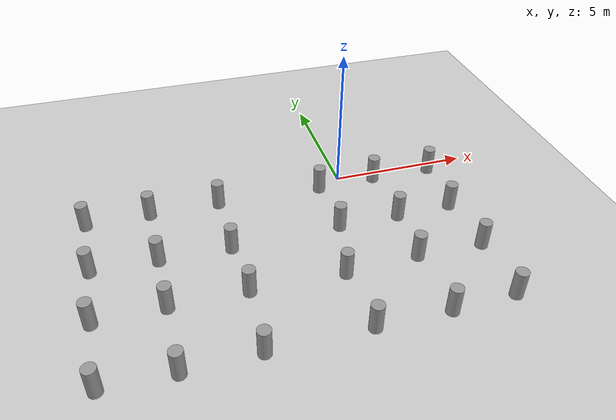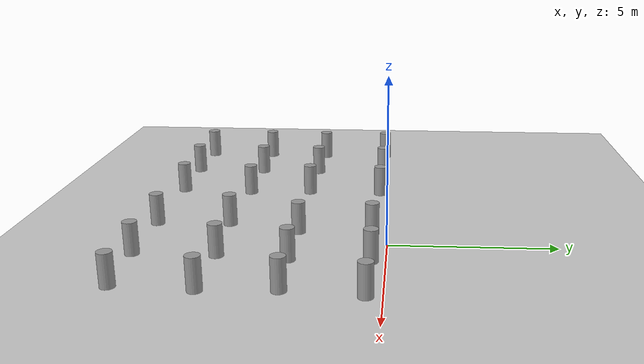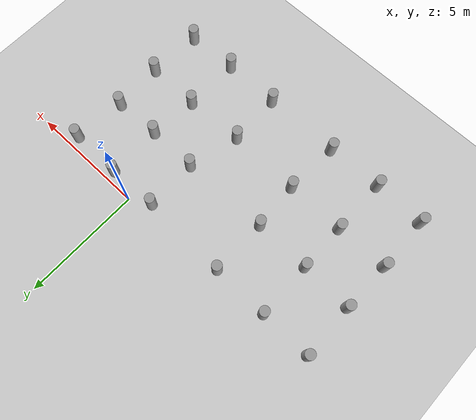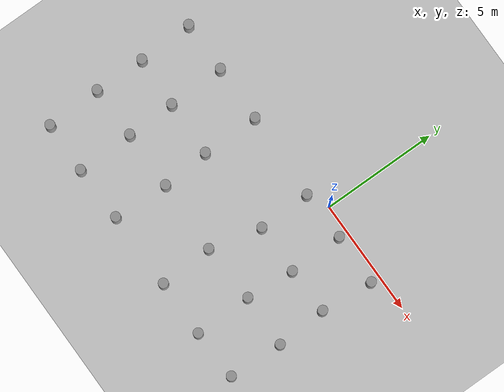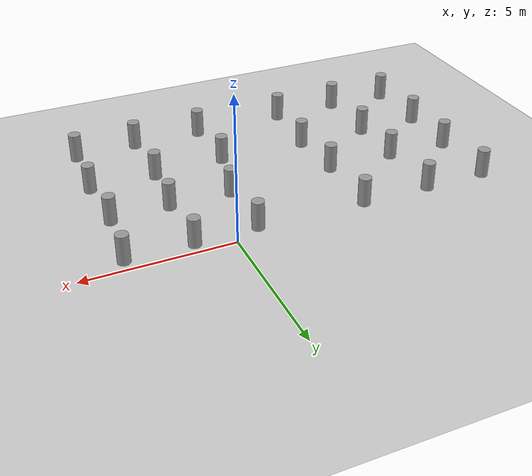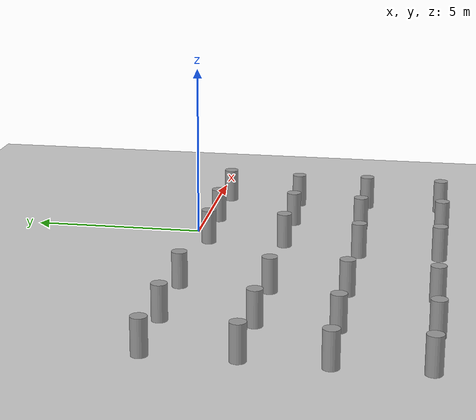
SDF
<sdf version="1.7">
 <world name="default">
  <model name="ground_plane">
   <static>1</static>
   <link name="link">
    <collision name="collision">
     <geometry><plane><normal>0 0 1</normal><size>100 100</size></plane></geometry>
     <surface><friction><ode><mu>100</mu><mu2>50</mu2></ode></friction></surface>
    </collision>
    <visual name="visual">
     <cast_shadows>0</cast_shadows>
     <geometry><plane><normal>0 0 1</normal><size>100 100</size></plane></geometry>
     <material>
      <script><uri>file://media/materials/scripts/gazebo.material</uri><name>Gazebo/Grey</name></script>
     </material>
    </visual>
   </link>
  </model>
  <model name="seats">
   <link name="link_20">
    <inertial>
     <mass>0.184397</mass>
     <inertia>
      <ixx>0.0174914</ixx>
      <ixy>0</ixy>
      <ixz>0</ixz>
      <iyy>0.0174914</iyy>
      <iyz>0</iyz>
      <izz>0.00425014</izz>
     </inertia>
    </inertial>
    <pose>2.04041 1.08851 0 0 -0 0</pose>
    <visual name="visual">
     <geometry><cylinder><radius>0.214704</radius><length>1</length></cylinder></geometry>
     <material>
      <lighting>1</lighting>
      <script><uri>file://media/materials/scripts/gazebo.material</uri><name>Gazebo/Grey</name></script>
      <shader type="pixel"/>
     </material>
    </visual>
    <collision name="collision">
     <geometry><cylinder><radius>0.214704</radius><length>1</length></cylinder></geometry>
     <surface>
      <friction>
       <ode><mu>1</mu><mu2>1</mu2><fdir1>0 0 0</fdir1><slip1>0</slip1><slip2>0</slip2></ode>
       <torsional>
        <coefficient>1</coefficient>
        <patch_radius>0</patch_radius>
        <surface_radius>0</surface_radius>
        <use_patch_radius>1</use_patch_radius>
        <ode><slip>0</slip></ode>
       </torsional>
      </friction>
      <bounce><restitution_coefficient>0</restitution_coefficient><threshold>1e+06</threshold></bounce>
      <contact>
       <collide_without_contact>0</collide_without_contact>
       <collide_without_contact_bitmask>1</collide_without_contact_bitmask>
       <collide_bitmask>1</collide_bitmask>
       <ode>
        <soft_cfm>0</soft_cfm>
        <soft_erp>0.2</soft_erp>
        <kp>1e+13</kp>
        <kd>1</kd>
        <max_vel>0.01</max_vel>
        <min_depth>0</min_depth>
       </ode>
       <bullet>
        <split_impulse>1</split_impulse>
        <split_impulse_penetration_threshold>-0.01</split_impulse_penetration_threshold>
        <soft_cfm>0</soft_cfm>
        <soft_erp>0.2</soft_erp>
        <kp>1e+13</kp>
        <kd>1</kd>
       </bullet>
      </contact>
     </surface>
    </collision>
   </link>
   <link name="link_20_clone">
    <inertial>
     <mass>0.184397</mass>
     <inertia>
      <ixx>0.0174914</ixx>
      <ixy>0</ixy>
      <ixz>0</ixz>
      <iyy>0.0174914</iyy>
      <iyz>0</iyz>
      <izz>0.00425014</izz>
     </inertia>
    </inertial>
    <pose>2.01513 3.33293 0 0 -0 0</pose>
    <visual name="visual">
     <geometry><cylinder><radius>0.214704</radius><length>1</length></cylinder></geometry>
     <material>
      <lighting>1</lighting>
      <script><uri>file://media/materials/scripts/gazebo.material</uri><name>Gazebo/Grey</name></script>
      <shader type="pixel"/>
     </material>
    </visual>
    <collision name="collision">
     <geometry><cylinder><radius>0.214704</radius><length>1</length></cylinder></geometry>
     <surface>
      <friction>
       <ode><mu>1</mu><mu2>1</mu2><fdir1>0 0 0</fdir1><slip1>0</slip1><slip2>0</slip2></ode>
       <torsional>
        <coefficient>1</coefficient>
        <patch_radius>0</patch_radius>
        <surface_radius>0</surface_radius>
        <use_patch_radius>1</use_patch_radius>
        <ode><slip>0</slip></ode>
       </torsional>
      </friction>
      <bounce><restitution_coefficient>0</restitution_coefficient><threshold>1e+06</threshold></bounce>
      <contact>
       <collide_without_contact>0</collide_without_contact>
       <collide_without_contact_bitmask>1</collide_without_contact_bitmask>
       <collide_bitmask>1</collide_bitmask>
       <ode>
        <soft_cfm>0</soft_cfm>
        <soft_erp>0.2</soft_erp>
        <kp>1e+13</kp>
        <kd>1</kd>
        <max_vel>0.01</max_vel>
        <min_depth>0</min_depth>
       </ode>
       <bullet>
        <split_impulse>1</split_impulse>
        <split_impulse_penetration_threshold>-0.01</split_impulse_penetration_threshold>
        <soft_cfm>0</soft_cfm>
        <soft_erp>0.2</soft_erp>
        <kp>1e+13</kp>
        <kd>1</kd>
       </bullet>
      </contact>
     </surface>
    </collision>
   </link>
   <link name="link_20_clone_0">
    <inertial>
     <mass>0.184397</mass>
     <inertia>
      <ixx>0.0174914</ixx>
      <ixy>0</ixy>
      <ixz>0</ixz>
      <iyy>0.0174914</iyy>
      <iyz>0</iyz>
      <izz>0.00425014</izz>
     </inertia>
    </inertial>
    <pose>4.14757 3.39835 0 0 -0 0</pose>
    <visual name="visual">
     <geometry><cylinder><radius>0.214704</radius><length>1</length></cylinder></geometry>
     <material>
      <lighting>1</lighting>
      <script><uri>file://media/materials/scripts/gazebo.material</uri><name>Gazebo/Grey</name></script>
      <shader type="pixel"/>
     </material>
    </visual>
    <collision name="collision">
     <geometry><cylinder><radius>0.214704</radius><length>1</length></cylinder></geometry>
     <surface>
      <friction>
       <ode><mu>1</mu><mu2>1</mu2><fdir1>0 0 0</fdir1><slip1>0</slip1><slip2>0</slip2></ode>
       <torsional>
        <coefficient>1</coefficient>
        <patch_radius>0</patch_radius>
        <surface_radius>0</surface_radius>
        <use_patch_radius>1</use_patch_radius>
        <ode><slip>0</slip></ode>
       </torsional>
      </friction>
      <bounce><restitution_coefficient>0</restitution_coefficient><threshold>1e+06</threshold></bounce>
      <contact>
       <collide_without_contact>0</collide_without_contact>
       <collide_without_contact_bitmask>1</collide_without_contact_bitmask>
       <collide_bitmask>1</collide_bitmask>
       <ode>
        <soft_cfm>0</soft_cfm>
        <soft_erp>0.2</soft_erp>
        <kp>1e+13</kp>
        <kd>1</kd>
        <max_vel>0.01</max_vel>
        <min_depth>0</min_depth>
       </ode>
       <bullet>
        <split_impulse>1</split_impulse>
        <split_impulse_penetration_threshold>-0.01</split_impulse_penetration_threshold>
        <soft_cfm>0</soft_cfm>
        <soft_erp>0.2</soft_erp>
        <kp>1e+13</kp>
        <kd>1</kd>
       </bullet>
      </contact>
     </surface>
    </collision>
   </link>
   <link name="link_20_clone_1">
    <inertial>
     <mass>0.184397</mass>
     <inertia>
      <ixx>0.0174914</ixx>
      <ixy>0</ixy>
      <ixz>0</ixz>
      <iyy>0.0174914</iyy>
      <iyz>0</iyz>
      <izz>0.00425014</izz>
     </inertia>
    </inertial>
    <pose>6.36814 3.3742 0 0 -0 0</pose>
    <visual name="visual">
     <geometry><cylinder><radius>0.214704</radius><length>1</length></cylinder></geometry>
     <material>
      <lighting>1</lighting>
      <script><uri>file://media/materials/scripts/gazebo.material</uri><name>Gazebo/Grey</name></script>
      <shader type="pixel"/>
     </material>
    </visual>
    <collision name="collision">
     <geometry><cylinder><radius>0.214704</radius><length>1</length></cylinder></geometry>
     <surface>
      <friction>
       <ode><mu>1</mu><mu2>1</mu2><fdir1>0 0 0</fdir1><slip1>0</slip1><slip2>0</slip2></ode>
       <torsional>
        <coefficient>1</coefficient>
        <patch_radius>0</patch_radius>
        <surface_radius>0</surface_radius>
        <use_patch_radius>1</use_patch_radius>
        <ode><slip>0</slip></ode>
       </torsional>
      </friction>
      <bounce><restitution_coefficient>0</restitution_coefficient><threshold>1e+06</threshold></bounce>
      <contact>
       <collide_without_contact>0</collide_without_contact>
       <collide_without_contact_bitmask>1</collide_without_contact_bitmask>
       <collide_bitmask>1</collide_bitmask>
       <ode>
        <soft_cfm>0</soft_cfm>
        <soft_erp>0.2</soft_erp>
        <kp>1e+13</kp>
        <kd>1</kd>
        <max_vel>0.01</max_vel>
        <min_depth>0</min_depth>
       </ode>
       <bullet>
        <split_impulse>1</split_impulse>
        <split_impulse_penetration_threshold>-0.01</split_impulse_penetration_threshold>
        <soft_cfm>0</soft_cfm>
        <soft_erp>0.2</soft_erp>
        <kp>1e+13</kp>
        <kd>1</kd>
       </bullet>
      </contact>
     </surface>
    </collision>
   </link>
   <link name="link_20_clone_10">
    <inertial>
     <mass>0.184397</mass>
     <inertia>
      <ixx>0.0174914</ixx>
      <ixy>0</ixy>
      <ixz>0</ixz>
      <iyy>0.0174914</iyy>
      <iyz>0</iyz>
      <izz>0.00425014</izz>
     </inertia>
    </inertial>
    <pose>-1.707 -3.42687 0 0 -0 0</pose>
    <visual name="visual">
     <geometry><cylinder><radius>0.214704</radius><length>1</length></cylinder></geometry>
     <material>
      <lighting>1</lighting>
      <script><uri>file://media/materials/scripts/gazebo.material</uri><name>Gazebo/Grey</name></script>
      <shader type="pixel"/>
     </material>
    </visual>
    <collision name="collision">
     <geometry><cylinder><radius>0.214704</radius><length>1</length></cylinder></geometry>
     <surface>
      <friction>
       <ode><mu>1</mu><mu2>1</mu2><fdir1>0 0 0</fdir1><slip1>0</slip1><slip2>0</slip2></ode>
       <torsional>
        <coefficient>1</coefficient>
        <patch_radius>0</patch_radius>
        <surface_radius>0</surface_radius>
        <use_patch_radius>1</use_patch_radius>
        <ode><slip>0</slip></ode>
       </torsional>
      </friction>
      <bounce><restitution_coefficient>0</restitution_coefficient><threshold>1e+06</threshold></bounce>
      <contact>
       <collide_without_contact>0</collide_without_contact>
       <collide_without_contact_bitmask>1</collide_without_contact_bitmask>
       <collide_bitmask>1</collide_bitmask>
       <ode>
        <soft_cfm>0</soft_cfm>
        <soft_erp>0.2</soft_erp>
        <kp>1e+13</kp>
        <kd>1</kd>
        <max_vel>0.01</max_vel>
        <min_depth>0</min_depth>
       </ode>
       <bullet>
        <split_impulse>1</split_impulse>
        <split_impulse_penetration_threshold>-0.01</split_impulse_penetration_threshold>
        <soft_cfm>0</soft_cfm>
        <soft_erp>0.2</soft_erp>
        <kp>1e+13</kp>
        <kd>1</kd>
       </bullet>
      </contact>
     </surface>
    </collision>
   </link>
   <link name="link_20_clone_11">
    <inertial>
     <mass>0.184397</mass>
     <inertia>
      <ixx>0.0174914</ixx>
      <ixy>0</ixy>
      <ixz>0</ixz>
      <iyy>0.0174914</iyy>
      <iyz>0</iyz>
      <izz>0.00425014</izz>
     </inertia>
    </inertial>
    <pose>-4.08187 -3.4742 0 0 -0 0</pose>
    <visual name="visual">
     <geometry><cylinder><radius>0.214704</radius><length>1</length></cylinder></geometry>
     <material>
      <lighting>1</lighting>
      <script><uri>file://media/materials/scripts/gazebo.material</uri><name>Gazebo/Grey</name></script>
      <shader type="pixel"/>
     </material>
    </visual>
    <collision name="collision">
     <geometry><cylinder><radius>0.214704</radius><length>1</length></cylinder></geometry>
     <surface>
      <friction>
       <ode><mu>1</mu><mu2>1</mu2><fdir1>0 0 0</fdir1><slip1>0</slip1><slip2>0</slip2></ode>
       <torsional>
        <coefficient>1</coefficient>
        <patch_radius>0</patch_radius>
        <surface_radius>0</surface_radius>
        <use_patch_radius>1</use_patch_radius>
        <ode><slip>0</slip></ode>
       </torsional>
      </friction>
      <bounce><restitution_coefficient>0</restitution_coefficient><threshold>1e+06</threshold></bounce>
      <contact>
       <collide_without_contact>0</collide_without_contact>
       <collide_without_contact_bitmask>1</collide_without_contact_bitmask>
       <collide_bitmask>1</collide_bitmask>
       <ode>
        <soft_cfm>0</soft_cfm>
        <soft_erp>0.2</soft_erp>
        <kp>1e+13</kp>
        <kd>1</kd>
        <max_vel>0.01</max_vel>
        <min_depth>0</min_depth>
       </ode>
       <bullet>
        <split_impulse>1</split_impulse>
        <split_impulse_penetration_threshold>-0.01</split_impulse_penetration_threshold>
        <soft_cfm>0</soft_cfm>
        <soft_erp>0.2</soft_erp>
        <kp>1e+13</kp>
        <kd>1</kd>
       </bullet>
      </contact>
     </surface>
    </collision>
   </link>
   <link name="link_20_clone_12">
    <inertial>
     <mass>0.184397</mass>
     <inertia>
      <ixx>0.0174914</ixx>
      <ixy>0</ixy>
      <ixz>0</ixz>
      <iyy>0.0174914</iyy>
      <iyz>0</iyz>
      <izz>0.00425014</izz>
     </inertia>
    </inertial>
    <pose>-6.26898 -3.42449 0 0 -0 0</pose>
    <visual name="visual">
     <geometry><cylinder><radius>0.214704</radius><length>1</length></cylinder></geometry>
     <material>
      <lighting>1</lighting>
      <script><uri>file://media/materials/scripts/gazebo.material</uri><name>Gazebo/Grey</name></script>
      <shader type="pixel"/>
     </material>
    </visual>
    <collision name="collision">
     <geometry><cylinder><radius>0.214704</radius><length>1</length></cylinder></geometry>
     <surface>
      <friction>
       <ode><mu>1</mu><mu2>1</mu2><fdir1>0 0 0</fdir1><slip1>0</slip1><slip2>0</slip2></ode>
       <torsional>
        <coefficient>1</coefficient>
        <patch_radius>0</patch_radius>
        <surface_radius>0</surface_radius>
        <use_patch_radius>1</use_patch_radius>
        <ode><slip>0</slip></ode>
       </torsional>
      </friction>
      <bounce><restitution_coefficient>0</restitution_coefficient><threshold>1e+06</threshold></bounce>
      <contact>
       <collide_without_contact>0</collide_without_contact>
       <collide_without_contact_bitmask>1</collide_without_contact_bitmask>
       <collide_bitmask>1</collide_bitmask>
       <ode>
        <soft_cfm>0</soft_cfm>
        <soft_erp>0.2</soft_erp>
        <kp>1e+13</kp>
        <kd>1</kd>
        <max_vel>0.01</max_vel>
        <min_depth>0</min_depth>
       </ode>
       <bullet>
        <split_impulse>1</split_impulse>
        <split_impulse_penetration_threshold>-0.01</split_impulse_penetration_threshold>
        <soft_cfm>0</soft_cfm>
        <soft_erp>0.2</soft_erp>
        <kp>1e+13</kp>
        <kd>1</kd>
       </bullet>
      </contact>
     </surface>
    </collision>
   </link>
   <link name="link_20_clone_13">
    <inertial>
     <mass>0.184397</mass>
     <inertia>
      <ixx>0.0174914</ixx>
      <ixy>0</ixy>
      <ixz>0</ixz>
      <iyy>0.0174914</iyy>
      <iyz>0</iyz>
      <izz>0.00425014</izz>
     </inertia>
    </inertial>
    <pose>-6.32123 -1.0665 0 0 -0 0</pose>
    <visual name="visual">
     <geometry><cylinder><radius>0.214704</radius><length>1</length></cylinder></geometry>
     <material>
      <lighting>1</lighting>
      <script><uri>file://media/materials/scripts/gazebo.material</uri><name>Gazebo/Grey</name></script>
      <shader type="pixel"/>
     </material>
    </visual>
    <collision name="collision">
     <geometry><cylinder><radius>0.214704</radius><length>1</length></cylinder></geometry>
     <surface>
      <friction>
       <ode><mu>1</mu><mu2>1</mu2><fdir1>0 0 0</fdir1><slip1>0</slip1><slip2>0</slip2></ode>
       <torsional>
        <coefficient>1</coefficient>
        <patch_radius>0</patch_radius>
        <surface_radius>0</surface_radius>
        <use_patch_radius>1</use_patch_radius>
        <ode><slip>0</slip></ode>
       </torsional>
      </friction>
      <bounce><restitution_coefficient>0</restitution_coefficient><threshold>1e+06</threshold></bounce>
      <contact>
       <collide_without_contact>0</collide_without_contact>
       <collide_without_contact_bitmask>1</collide_without_contact_bitmask>
       <collide_bitmask>1</collide_bitmask>
       <ode>
        <soft_cfm>0</soft_cfm>
        <soft_erp>0.2</soft_erp>
        <kp>1e+13</kp>
        <kd>1</kd>
        <max_vel>0.01</max_vel>
        <min_depth>0</min_depth>
       </ode>
       <bullet>
        <split_impulse>1</split_impulse>
        <split_impulse_penetration_threshold>-0.01</split_impulse_penetration_threshold>
        <soft_cfm>0</soft_cfm>
        <soft_erp>0.2</soft_erp>
        <kp>1e+13</kp>
        <kd>1</kd>
       </bullet>
      </contact>
     </surface>
    </collision>
   </link>
   <link name="link_20_clone_14">
    <inertial>
     <mass>0.184397</mass>
     <inertia>
      <ixx>0.0174914</ixx>
      <ixy>0</ixy>
      <ixz>0</ixz>
      <iyy>0.0174914</iyy>
      <iyz>0</iyz>
      <izz>0.00425014</izz>
     </inertia>
    </inertial>
    <pose>-4.09685 -1.04435 0 0 -0 0</pose>
    <visual name="visual">
     <geometry><cylinder><radius>0.214704</radius><length>1</length></cylinder></geometry>
     <material>
      <lighting>1</lighting>
      <script><uri>file://media/materials/scripts/gazebo.material</uri><name>Gazebo/Grey</name></script>
      <shader type="pixel"/>
     </material>
    </visual>
    <collision name="collision">
     <geometry><cylinder><radius>0.214704</radius><length>1</length></cylinder></geometry>
     <surface>
      <friction>
       <ode><mu>1</mu><mu2>1</mu2><fdir1>0 0 0</fdir1><slip1>0</slip1><slip2>0</slip2></ode>
       <torsional>
        <coefficient>1</coefficient>
        <patch_radius>0</patch_radius>
        <surface_radius>0</surface_radius>
        <use_patch_radius>1</use_patch_radius>
        <ode><slip>0</slip></ode>
       </torsional>
      </friction>
      <bounce><restitution_coefficient>0</restitution_coefficient><threshold>1e+06</threshold></bounce>
      <contact>
       <collide_without_contact>0</collide_without_contact>
       <collide_without_contact_bitmask>1</collide_without_contact_bitmask>
       <collide_bitmask>1</collide_bitmask>
       <ode>
        <soft_cfm>0</soft_cfm>
        <soft_erp>0.2</soft_erp>
        <kp>1e+13</kp>
        <kd>1</kd>
        <max_vel>0.01</max_vel>
        <min_depth>0</min_depth>
       </ode>
       <bullet>
        <split_impulse>1</split_impulse>
        <split_impulse_penetration_threshold>-0.01</split_impulse_penetration_threshold>
        <soft_cfm>0</soft_cfm>
        <soft_erp>0.2</soft_erp>
        <kp>1e+13</kp>
        <kd>1</kd>
       </bullet>
      </contact>
     </surface>
    </collision>
   </link>
   <link name="link_20_clone_15">
    <inertial>
     <mass>0.184397</mass>
     <inertia>
      <ixx>0.0174914</ixx>
      <ixy>0</ixy>
      <ixz>0</ixz>
      <iyy>0.0174914</iyy>
      <iyz>0</iyz>
      <izz>0.00425014</izz>
     </inertia>
    </inertial>
    <pose>-1.59741 -1.05691 0 0 -0 0</pose>
    <visual name="visual">
     <geometry><cylinder><radius>0.214704</radius><length>1</length></cylinder></geometry>
     <material>
      <lighting>1</lighting>
      <script><uri>file://media/materials/scripts/gazebo.material</uri><name>Gazebo/Grey</name></script>
      <shader type="pixel"/>
     </material>
    </visual>
    <collision name="collision">
     <geometry><cylinder><radius>0.214704</radius><length>1</length></cylinder></geometry>
     <surface>
      <friction>
       <ode><mu>1</mu><mu2>1</mu2><fdir1>0 0 0</fdir1><slip1>0</slip1><slip2>0</slip2></ode>
       <torsional>
        <coefficient>1</coefficient>
        <patch_radius>0</patch_radius>
        <surface_radius>0</surface_radius>
        <use_patch_radius>1</use_patch_radius>
        <ode><slip>0</slip></ode>
       </torsional>
      </friction>
      <bounce><restitution_coefficient>0</restitution_coefficient><threshold>1e+06</threshold></bounce>
      <contact>
       <collide_without_contact>0</collide_without_contact>
       <collide_without_contact_bitmask>1</collide_without_contact_bitmask>
       <collide_bitmask>1</collide_bitmask>
       <ode>
        <soft_cfm>0</soft_cfm>
        <soft_erp>0.2</soft_erp>
        <kp>1e+13</kp>
        <kd>1</kd>
        <max_vel>0.01</max_vel>
        <min_depth>0</min_depth>
       </ode>
       <bullet>
        <split_impulse>1</split_impulse>
        <split_impulse_penetration_threshold>-0.01</split_impulse_penetration_threshold>
        <soft_cfm>0</soft_cfm>
        <soft_erp>0.2</soft_erp>
        <kp>1e+13</kp>
        <kd>1</kd>
       </bullet>
      </contact>
     </surface>
    </collision>
   </link>
   <link name="link_20_clone_16">
    <inertial>
     <mass>0.184397</mass>
     <inertia>
      <ixx>0.0174914</ixx>
      <ixy>0</ixy>
      <ixz>0</ixz>
      <iyy>0.0174914</iyy>
      <iyz>0</iyz>
      <izz>0.00425014</izz>
     </inertia>
    </inertial>
    <pose>-1.73196 0.997548 0 0 -0 0</pose>
    <visual name="visual">
     <geometry><cylinder><radius>0.214704</radius><length>1</length></cylinder></geometry>
     <material>
      <lighting>1</lighting>
      <script><uri>file://media/materials/scripts/gazebo.material</uri><name>Gazebo/Grey</name></script>
      <shader type="pixel"/>
     </material>
    </visual>
    <collision name="collision">
     <geometry><cylinder><radius>0.214704</radius><length>1</length></cylinder></geometry>
     <surface>
      <friction>
       <ode><mu>1</mu><mu2>1</mu2><fdir1>0 0 0</fdir1><slip1>0</slip1><slip2>0</slip2></ode>
       <torsional>
        <coefficient>1</coefficient>
        <patch_radius>0</patch_radius>
        <surface_radius>0</surface_radius>
        <use_patch_radius>1</use_patch_radius>
        <ode><slip>0</slip></ode>
       </torsional>
      </friction>
      <bounce><restitution_coefficient>0</restitution_coefficient><threshold>1e+06</threshold></bounce>
      <contact>
       <collide_without_contact>0</collide_without_contact>
       <collide_without_contact_bitmask>1</collide_without_contact_bitmask>
       <collide_bitmask>1</collide_bitmask>
       <ode>
        <soft_cfm>0</soft_cfm>
        <soft_erp>0.2</soft_erp>
        <kp>1e+13</kp>
        <kd>1</kd>
        <max_vel>0.01</max_vel>
        <min_depth>0</min_depth>
       </ode>
       <bullet>
        <split_impulse>1</split_impulse>
        <split_impulse_penetration_threshold>-0.01</split_impulse_penetration_threshold>
        <soft_cfm>0</soft_cfm>
        <soft_erp>0.2</soft_erp>
        <kp>1e+13</kp>
        <kd>1</kd>
       </bullet>
      </contact>
     </surface>
    </collision>
   </link>
   <link name="link_20_clone_17">
    <inertial>
     <mass>0.184397</mass>
     <inertia>
      <ixx>0.0174914</ixx>
      <ixy>0</ixy>
      <ixz>0</ixz>
      <iyy>0.0174914</iyy>
      <iyz>0</iyz>
      <izz>0.00425014</izz>
     </inertia>
    </inertial>
    <pose>-4.11652 1.04181 0 0 -0 0</pose>
    <visual name="visual">
     <geometry><cylinder><radius>0.214704</radius><length>1</length></cylinder></geometry>
     <material>
      <lighting>1</lighting>
      <script><uri>file://media/materials/scripts/gazebo.material</uri><name>Gazebo/Grey</name></script>
      <shader type="pixel"/>
     </material>
    </visual>
    <collision name="collision">
     <geometry><cylinder><radius>0.214704</radius><length>1</length></cylinder></geometry>
     <surface>
      <friction>
       <ode><mu>1</mu><mu2>1</mu2><fdir1>0 0 0</fdir1><slip1>0</slip1><slip2>0</slip2></ode>
       <torsional>
        <coefficient>1</coefficient>
        <patch_radius>0</patch_radius>
        <surface_radius>0</surface_radius>
        <use_patch_radius>1</use_patch_radius>
        <ode><slip>0</slip></ode>
       </torsional>
      </friction>
      <bounce><restitution_coefficient>0</restitution_coefficient><threshold>1e+06</threshold></bounce>
      <contact>
       <collide_without_contact>0</collide_without_contact>
       <collide_without_contact_bitmask>1</collide_without_contact_bitmask>
       <collide_bitmask>1</collide_bitmask>
       <ode>
        <soft_cfm>0</soft_cfm>
        <soft_erp>0.2</soft_erp>
        <kp>1e+13</kp>
        <kd>1</kd>
        <max_vel>0.01</max_vel>
        <min_depth>0</min_depth>
       </ode>
       <bullet>
        <split_impulse>1</split_impulse>
        <split_impulse_penetration_threshold>-0.01</split_impulse_penetration_threshold>
        <soft_cfm>0</soft_cfm>
        <soft_erp>0.2</soft_erp>
        <kp>1e+13</kp>
        <kd>1</kd>
       </bullet>
      </contact>
     </surface>
    </collision>
   </link>
   <link name="link_20_clone_18">
    <inertial>
     <mass>0.184397</mass>
     <inertia>
      <ixx>0.0174914</ixx>
      <ixy>0</ixy>
      <ixz>0</ixz>
      <iyy>0.0174914</iyy>
      <iyz>0</iyz>
      <izz>0.00425014</izz>
     </inertia>
    </inertial>
    <pose>-6.28782 1.115 0 0 -0 0</pose>
    <visual name="visual">
     <geometry><cylinder><radius>0.214704</radius><length>1</length></cylinder></geometry>
     <material>
      <lighting>1</lighting>
      <script><uri>file://media/materials/scripts/gazebo.material</uri><name>Gazebo/Grey</name></script>
      <shader type="pixel"/>
     </material>
    </visual>
    <collision name="collision">
     <geometry><cylinder><radius>0.214704</radius><length>1</length></cylinder></geometry>
     <surface>
      <friction>
       <ode><mu>1</mu><mu2>1</mu2><fdir1>0 0 0</fdir1><slip1>0</slip1><slip2>0</slip2></ode>
       <torsional>
        <coefficient>1</coefficient>
        <patch_radius>0</patch_radius>
        <surface_radius>0</surface_radius>
        <use_patch_radius>1</use_patch_radius>
        <ode><slip>0</slip></ode>
       </torsional>
      </friction>
      <bounce><restitution_coefficient>0</restitution_coefficient><threshold>1e+06</threshold></bounce>
      <contact>
       <collide_without_contact>0</collide_without_contact>
       <collide_without_contact_bitmask>1</collide_without_contact_bitmask>
       <collide_bitmask>1</collide_bitmask>
       <ode>
        <soft_cfm>0</soft_cfm>
        <soft_erp>0.2</soft_erp>
        <kp>1e+13</kp>
        <kd>1</kd>
        <max_vel>0.01</max_vel>
        <min_depth>0</min_depth>
       </ode>
       <bullet>
        <split_impulse>1</split_impulse>
        <split_impulse_penetration_threshold>-0.01</split_impulse_penetration_threshold>
        <soft_cfm>0</soft_cfm>
        <soft_erp>0.2</soft_erp>
        <kp>1e+13</kp>
        <kd>1</kd>
       </bullet>
      </contact>
     </surface>
    </collision>
   </link>
   <link name="link_20_clone_19">
    <inertial>
     <mass>0.184397</mass>
     <inertia>
      <ixx>0.0174914</ixx>
      <ixy>0</ixy>
      <ixz>0</ixz>
      <iyy>0.0174914</iyy>
      <iyz>0</iyz>
      <izz>0.00425014</izz>
     </inertia>
    </inertial>
    <pose>-6.33401 3.46602 0 0 -0 0</pose>
    <visual name="visual">
     <geometry><cylinder><radius>0.214704</radius><length>1</length></cylinder></geometry>
     <material>
      <lighting>1</lighting>
      <script><uri>file://media/materials/scripts/gazebo.material</uri><name>Gazebo/Grey</name></script>
      <shader type="pixel"/>
     </material>
    </visual>
    <collision name="collision">
     <geometry><cylinder><radius>0.214704</radius><length>1</length></cylinder></geometry>
     <surface>
      <friction>
       <ode><mu>1</mu><mu2>1</mu2><fdir1>0 0 0</fdir1><slip1>0</slip1><slip2>0</slip2></ode>
       <torsional>
        <coefficient>1</coefficient>
        <patch_radius>0</patch_radius>
        <surface_radius>0</surface_radius>
        <use_patch_radius>1</use_patch_radius>
        <ode><slip>0</slip></ode>
       </torsional>
      </friction>
      <bounce><restitution_coefficient>0</restitution_coefficient><threshold>1e+06</threshold></bounce>
      <contact>
       <collide_without_contact>0</collide_without_contact>
       <collide_without_contact_bitmask>1</collide_without_contact_bitmask>
       <collide_bitmask>1</collide_bitmask>
       <ode>
        <soft_cfm>0</soft_cfm>
        <soft_erp>0.2</soft_erp>
        <kp>1e+13</kp>
        <kd>1</kd>
        <max_vel>0.01</max_vel>
        <min_depth>0</min_depth>
       </ode>
       <bullet>
        <split_impulse>1</split_impulse>
        <split_impulse_penetration_threshold>-0.01</split_impulse_penetration_threshold>
        <soft_cfm>0</soft_cfm>
        <soft_erp>0.2</soft_erp>
        <kp>1e+13</kp>
        <kd>1</kd>
       </bullet>
      </contact>
     </surface>
    </collision>
   </link>
   <link name="link_20_clone_2">
    <inertial>
     <mass>0.184397</mass>
     <inertia>
      <ixx>0.0174914</ixx>
      <ixy>0</ixy>
      <ixz>0</ixz>
      <iyy>0.0174914</iyy>
      <iyz>0</iyz>
      <izz>0.00425014</izz>
     </inertia>
    </inertial>
    <pose>4.17025 1.06597 0 0 -0 0</pose>
    <visual name="visual">
     <geometry><cylinder><radius>0.214704</radius><length>1</length></cylinder></geometry>
     <material>
      <lighting>1</lighting>
      <script><uri>file://media/materials/scripts/gazebo.material</uri><name>Gazebo/Grey</name></script>
      <shader type="pixel"/>
     </material>
    </visual>
    <collision name="collision">
     <geometry><cylinder><radius>0.214704</radius><length>1</length></cylinder></geometry>
     <surface>
      <friction>
       <ode><mu>1</mu><mu2>1</mu2><fdir1>0 0 0</fdir1><slip1>0</slip1><slip2>0</slip2></ode>
       <torsional>
        <coefficient>1</coefficient>
        <patch_radius>0</patch_radius>
        <surface_radius>0</surface_radius>
        <use_patch_radius>1</use_patch_radius>
        <ode><slip>0</slip></ode>
       </torsional>
      </friction>
      <bounce><restitution_coefficient>0</restitution_coefficient><threshold>1e+06</threshold></bounce>
      <contact>
       <collide_without_contact>0</collide_without_contact>
       <collide_without_contact_bitmask>1</collide_without_contact_bitmask>
       <collide_bitmask>1</collide_bitmask>
       <ode>
        <soft_cfm>0</soft_cfm>
        <soft_erp>0.2</soft_erp>
        <kp>1e+13</kp>
        <kd>1</kd>
        <max_vel>0.01</max_vel>
        <min_depth>0</min_depth>
       </ode>
       <bullet>
        <split_impulse>1</split_impulse>
        <split_impulse_penetration_threshold>-0.01</split_impulse_penetration_threshold>
        <soft_cfm>0</soft_cfm>
        <soft_erp>0.2</soft_erp>
        <kp>1e+13</kp>
        <kd>1</kd>
       </bullet>
      </contact>
     </surface>
    </collision>
   </link>
   <link name="link_20_clone_20">
    <inertial>
     <mass>0.184397</mass>
     <inertia>
      <ixx>0.0174914</ixx>
      <ixy>0</ixy>
      <ixz>0</ixz>
      <iyy>0.0174914</iyy>
      <iyz>0</iyz>
      <izz>0.00425014</izz>
     </inertia>
    </inertial>
    <pose>-4.14246 3.46164 0 0 -0 0</pose>
    <visual name="visual">
     <geometry><cylinder><radius>0.214704</radius><length>1</length></cylinder></geometry>
     <material>
      <lighting>1</lighting>
      <script><uri>file://media/materials/scripts/gazebo.material</uri><name>Gazebo/Grey</name></script>
      <shader type="pixel"/>
     </material>
    </visual>
    <collision name="collision">
     <geometry><cylinder><radius>0.214704</radius><length>1</length></cylinder></geometry>
     <surface>
      <friction>
       <ode><mu>1</mu><mu2>1</mu2><fdir1>0 0 0</fdir1><slip1>0</slip1><slip2>0</slip2></ode>
       <torsional>
        <coefficient>1</coefficient>
        <patch_radius>0</patch_radius>
        <surface_radius>0</surface_radius>
        <use_patch_radius>1</use_patch_radius>
        <ode><slip>0</slip></ode>
       </torsional>
      </friction>
      <bounce><restitution_coefficient>0</restitution_coefficient><threshold>1e+06</threshold></bounce>
      <contact>
       <collide_without_contact>0</collide_without_contact>
       <collide_without_contact_bitmask>1</collide_without_contact_bitmask>
       <collide_bitmask>1</collide_bitmask>
       <ode>
        <soft_cfm>0</soft_cfm>
        <soft_erp>0.2</soft_erp>
        <kp>1e+13</kp>
        <kd>1</kd>
        <max_vel>0.01</max_vel>
        <min_depth>0</min_depth>
       </ode>
       <bullet>
        <split_impulse>1</split_impulse>
        <split_impulse_penetration_threshold>-0.01</split_impulse_penetration_threshold>
        <soft_cfm>0</soft_cfm>
        <soft_erp>0.2</soft_erp>
        <kp>1e+13</kp>
        <kd>1</kd>
       </bullet>
      </contact>
     </surface>
    </collision>
   </link>
   <link name="link_20_clone_21">
    <inertial>
     <mass>0.184397</mass>
     <inertia>
      <ixx>0.0174914</ixx>
      <ixy>0</ixy>
      <ixz>0</ixz>
      <iyy>0.0174914</iyy>
      <iyz>0</iyz>
      <izz>0.00425014</izz>
     </inertia>
    </inertial>
    <pose>-1.71649 3.44455 0 0 -0 0</pose>
    <visual name="visual">
     <geometry><cylinder><radius>0.214704</radius><length>1</length></cylinder></geometry>
     <material>
      <lighting>1</lighting>
      <script><uri>file://media/materials/scripts/gazebo.material</uri><name>Gazebo/Grey</name></script>
      <shader type="pixel"/>
     </material>
    </visual>
    <collision name="collision">
     <geometry><cylinder><radius>0.214704</radius><length>1</length></cylinder></geometry>
     <surface>
      <friction>
       <ode><mu>1</mu><mu2>1</mu2><fdir1>0 0 0</fdir1><slip1>0</slip1><slip2>0</slip2></ode>
       <torsional>
        <coefficient>1</coefficient>
        <patch_radius>0</patch_radius>
        <surface_radius>0</surface_radius>
        <use_patch_radius>1</use_patch_radius>
        <ode><slip>0</slip></ode>
       </torsional>
      </friction>
      <bounce><restitution_coefficient>0</restitution_coefficient><threshold>1e+06</threshold></bounce>
      <contact>
       <collide_without_contact>0</collide_without_contact>
       <collide_without_contact_bitmask>1</collide_without_contact_bitmask>
       <collide_bitmask>1</collide_bitmask>
       <ode>
        <soft_cfm>0</soft_cfm>
        <soft_erp>0.2</soft_erp>
        <kp>1e+13</kp>
        <kd>1</kd>
        <max_vel>0.01</max_vel>
        <min_depth>0</min_depth>
       </ode>
       <bullet>
        <split_impulse>1</split_impulse>
        <split_impulse_penetration_threshold>-0.01</split_impulse_penetration_threshold>
        <soft_cfm>0</soft_cfm>
        <soft_erp>0.2</soft_erp>
        <kp>1e+13</kp>
        <kd>1</kd>
       </bullet>
      </contact>
     </surface>
    </collision>
   </link>
   <link name="link_20_clone_3">
    <inertial>
     <mass>0.184397</mass>
     <inertia>
      <ixx>0.0174914</ixx>
      <ixy>0</ixy>
      <ixz>0</ixz>
      <iyy>0.0174914</iyy>
      <iyz>0</iyz>
      <izz>0.00425014</izz>
     </inertia>
    </inertial>
    <pose>6.16012 1.12491 0 0 -0 0</pose>
    <visual name="visual">
     <geometry><cylinder><radius>0.214704</radius><length>1</length></cylinder></geometry>
     <material>
      <lighting>1</lighting>
      <script><uri>file://media/materials/scripts/gazebo.material</uri><name>Gazebo/Grey</name></script>
      <shader type="pixel"/>
     </material>
    </visual>
    <collision name="collision">
     <geometry><cylinder><radius>0.214704</radius><length>1</length></cylinder></geometry>
     <surface>
      <friction>
       <ode><mu>1</mu><mu2>1</mu2><fdir1>0 0 0</fdir1><slip1>0</slip1><slip2>0</slip2></ode>
       <torsional>
        <coefficient>1</coefficient>
        <patch_radius>0</patch_radius>
        <surface_radius>0</surface_radius>
        <use_patch_radius>1</use_patch_radius>
        <ode><slip>0</slip></ode>
       </torsional>
      </friction>
      <bounce><restitution_coefficient>0</restitution_coefficient><threshold>1e+06</threshold></bounce>
      <contact>
       <collide_without_contact>0</collide_without_contact>
       <collide_without_contact_bitmask>1</collide_without_contact_bitmask>
       <collide_bitmask>1</collide_bitmask>
       <ode>
        <soft_cfm>0</soft_cfm>
        <soft_erp>0.2</soft_erp>
        <kp>1e+13</kp>
        <kd>1</kd>
        <max_vel>0.01</max_vel>
        <min_depth>0</min_depth>
       </ode>
       <bullet>
        <split_impulse>1</split_impulse>
        <split_impulse_penetration_threshold>-0.01</split_impulse_penetration_threshold>
        <soft_cfm>0</soft_cfm>
        <soft_erp>0.2</soft_erp>
        <kp>1e+13</kp>
        <kd>1</kd>
       </bullet>
      </contact>
     </surface>
    </collision>
   </link>
   <link name="link_20_clone_4">
    <inertial>
     <mass>0.184397</mass>
     <inertia>
      <ixx>0.0174914</ixx>
      <ixy>0</ixy>
      <ixz>0</ixz>
      <iyy>0.0174914</iyy>
      <iyz>0</iyz>
      <izz>0.00425014</izz>
     </inertia>
    </inertial>
    <pose>6.27135 -1.04455 0 0 -0 0</pose>
    <visual name="visual">
     <geometry><cylinder><radius>0.214704</radius><length>1</length></cylinder></geometry>
     <material>
      <lighting>1</lighting>
      <script><uri>file://media/materials/scripts/gazebo.material</uri><name>Gazebo/Grey</name></script>
      <shader type="pixel"/>
     </material>
    </visual>
    <collision name="collision">
     <geometry><cylinder><radius>0.214704</radius><length>1</length></cylinder></geometry>
     <surface>
      <friction>
       <ode><mu>1</mu><mu2>1</mu2><fdir1>0 0 0</fdir1><slip1>0</slip1><slip2>0</slip2></ode>
       <torsional>
        <coefficient>1</coefficient>
        <patch_radius>0</patch_radius>
        <surface_radius>0</surface_radius>
        <use_patch_radius>1</use_patch_radius>
        <ode><slip>0</slip></ode>
       </torsional>
      </friction>
      <bounce><restitution_coefficient>0</restitution_coefficient><threshold>1e+06</threshold></bounce>
      <contact>
       <collide_without_contact>0</collide_without_contact>
       <collide_without_contact_bitmask>1</collide_without_contact_bitmask>
       <collide_bitmask>1</collide_bitmask>
       <ode>
        <soft_cfm>0</soft_cfm>
        <soft_erp>0.2</soft_erp>
        <kp>1e+13</kp>
        <kd>1</kd>
        <max_vel>0.01</max_vel>
        <min_depth>0</min_depth>
       </ode>
       <bullet>
        <split_impulse>1</split_impulse>
        <split_impulse_penetration_threshold>-0.01</split_impulse_penetration_threshold>
        <soft_cfm>0</soft_cfm>
        <soft_erp>0.2</soft_erp>
        <kp>1e+13</kp>
        <kd>1</kd>
       </bullet>
      </contact>
     </surface>
    </collision>
   </link>
   <link name="link_20_clone_5">
    <inertial>
     <mass>0.184397</mass>
     <inertia>
      <ixx>0.0174914</ixx>
      <ixy>0</ixy>
      <ixz>0</ixz>
      <iyy>0.0174914</iyy>
      <iyz>0</iyz>
      <izz>0.00425014</izz>
     </inertia>
    </inertial>
    <pose>3.99552 -1.00521 0 0 -0 0</pose>
    <visual name="visual">
     <geometry><cylinder><radius>0.214704</radius><length>1</length></cylinder></geometry>
     <material>
      <lighting>1</lighting>
      <script><uri>file://media/materials/scripts/gazebo.material</uri><name>Gazebo/Grey</name></script>
      <shader type="pixel"/>
     </material>
    </visual>
    <collision name="collision">
     <geometry><cylinder><radius>0.214704</radius><length>1</length></cylinder></geometry>
     <surface>
      <friction>
       <ode><mu>1</mu><mu2>1</mu2><fdir1>0 0 0</fdir1><slip1>0</slip1><slip2>0</slip2></ode>
       <torsional>
        <coefficient>1</coefficient>
        <patch_radius>0</patch_radius>
        <surface_radius>0</surface_radius>
        <use_patch_radius>1</use_patch_radius>
        <ode><slip>0</slip></ode>
       </torsional>
      </friction>
      <bounce><restitution_coefficient>0</restitution_coefficient><threshold>1e+06</threshold></bounce>
      <contact>
       <collide_without_contact>0</collide_without_contact>
       <collide_without_contact_bitmask>1</collide_without_contact_bitmask>
       <collide_bitmask>1</collide_bitmask>
       <ode>
        <soft_cfm>0</soft_cfm>
        <soft_erp>0.2</soft_erp>
        <kp>1e+13</kp>
        <kd>1</kd>
        <max_vel>0.01</max_vel>
        <min_depth>0</min_depth>
       </ode>
       <bullet>
        <split_impulse>1</split_impulse>
        <split_impulse_penetration_threshold>-0.01</split_impulse_penetration_threshold>
        <soft_cfm>0</soft_cfm>
        <soft_erp>0.2</soft_erp>
        <kp>1e+13</kp>
        <kd>1</kd>
       </bullet>
      </contact>
     </surface>
    </collision>
   </link>
   <link name="link_20_clone_6">
    <inertial>
     <mass>0.184397</mass>
     <inertia>
      <ixx>0.0174914</ixx>
      <ixy>0</ixy>
      <ixz>0</ixz>
      <iyy>0.0174914</iyy>
      <iyz>0</iyz>
      <izz>0.00425014</izz>
     </inertia>
    </inertial>
    <pose>1.49214 -1.13459 0 0 -0 0</pose>
    <visual name="visual">
     <geometry><cylinder><radius>0.214704</radius><length>1</length></cylinder></geometry>
     <material>
      <lighting>1</lighting>
      <script><uri>file://media/materials/scripts/gazebo.material</uri><name>Gazebo/Grey</name></script>
      <shader type="pixel"/>
     </material>
    </visual>
    <collision name="collision">
     <geometry><cylinder><radius>0.214704</radius><length>1</length></cylinder></geometry>
     <surface>
      <friction>
       <ode><mu>1</mu><mu2>1</mu2><fdir1>0 0 0</fdir1><slip1>0</slip1><slip2>0</slip2></ode>
       <torsional>
        <coefficient>1</coefficient>
        <patch_radius>0</patch_radius>
        <surface_radius>0</surface_radius>
        <use_patch_radius>1</use_patch_radius>
        <ode><slip>0</slip></ode>
       </torsional>
      </friction>
      <bounce><restitution_coefficient>0</restitution_coefficient><threshold>1e+06</threshold></bounce>
      <contact>
       <collide_without_contact>0</collide_without_contact>
       <collide_without_contact_bitmask>1</collide_without_contact_bitmask>
       <collide_bitmask>1</collide_bitmask>
       <ode>
        <soft_cfm>0</soft_cfm>
        <soft_erp>0.2</soft_erp>
        <kp>1e+13</kp>
        <kd>1</kd>
        <max_vel>0.01</max_vel>
        <min_depth>0</min_depth>
       </ode>
       <bullet>
        <split_impulse>1</split_impulse>
        <split_impulse_penetration_threshold>-0.01</split_impulse_penetration_threshold>
        <soft_cfm>0</soft_cfm>
        <soft_erp>0.2</soft_erp>
        <kp>1e+13</kp>
        <kd>1</kd>
       </bullet>
      </contact>
     </surface>
    </collision>
   </link>
   <link name="link_20_clone_7">
    <inertial>
     <mass>0.184397</mass>
     <inertia>
      <ixx>0.0174914</ixx>
      <ixy>0</ixy>
      <ixz>0</ixz>
      <iyy>0.0174914</iyy>
      <iyz>0</iyz>
      <izz>0.00425014</izz>
     </inertia>
    </inertial>
    <pose>6.16828 -3.36848 0 0 -0 0</pose>
    <visual name="visual">
     <geometry><cylinder><radius>0.214704</radius><length>1</length></cylinder></geometry>
     <material>
      <lighting>1</lighting>
      <script><uri>file://media/materials/scripts/gazebo.material</uri><name>Gazebo/Grey</name></script>
      <shader type="pixel"/>
     </material>
    </visual>
    <collision name="collision">
     <geometry><cylinder><radius>0.214704</radius><length>1</length></cylinder></geometry>
     <surface>
      <friction>
       <ode><mu>1</mu><mu2>1</mu2><fdir1>0 0 0</fdir1><slip1>0</slip1><slip2>0</slip2></ode>
       <torsional>
        <coefficient>1</coefficient>
        <patch_radius>0</patch_radius>
        <surface_radius>0</surface_radius>
        <use_patch_radius>1</use_patch_radius>
        <ode><slip>0</slip></ode>
       </torsional>
      </friction>
      <bounce><restitution_coefficient>0</restitution_coefficient><threshold>1e+06</threshold></bounce>
      <contact>
       <collide_without_contact>0</collide_without_contact>
       <collide_without_contact_bitmask>1</collide_without_contact_bitmask>
       <collide_bitmask>1</collide_bitmask>
       <ode>
        <soft_cfm>0</soft_cfm>
        <soft_erp>0.2</soft_erp>
        <kp>1e+13</kp>
        <kd>1</kd>
        <max_vel>0.01</max_vel>
        <min_depth>0</min_depth>
       </ode>
       <bullet>
        <split_impulse>1</split_impulse>
        <split_impulse_penetration_threshold>-0.01</split_impulse_penetration_threshold>
        <soft_cfm>0</soft_cfm>
        <soft_erp>0.2</soft_erp>
        <kp>1e+13</kp>
        <kd>1</kd>
       </bullet>
      </contact>
     </surface>
    </collision>
   </link>
   <link name="link_20_clone_8">
    <inertial>
     <mass>0.184397</mass>
     <inertia>
      <ixx>0.0174914</ixx>
      <ixy>0</ixy>
      <ixz>0</ixz>
      <iyy>0.0174914</iyy>
      <iyz>0</iyz>
      <izz>0.00425014</izz>
     </inertia>
    </inertial>
    <pose>4.00136 -3.44353 0 0 -0 0</pose>
    <visual name="visual">
     <geometry><cylinder><radius>0.214704</radius><length>1</length></cylinder></geometry>
     <material>
      <lighting>1</lighting>
      <script><uri>file://media/materials/scripts/gazebo.material</uri><name>Gazebo/Grey</name></script>
      <shader type="pixel"/>
     </material>
    </visual>
    <collision name="collision">
     <geometry><cylinder><radius>0.214704</radius><length>1</length></cylinder></geometry>
     <surface>
      <friction>
       <ode><mu>1</mu><mu2>1</mu2><fdir1>0 0 0</fdir1><slip1>0</slip1><slip2>0</slip2></ode>
       <torsional>
        <coefficient>1</coefficient>
        <patch_radius>0</patch_radius>
        <surface_radius>0</surface_radius>
        <use_patch_radius>1</use_patch_radius>
        <ode><slip>0</slip></ode>
       </torsional>
      </friction>
      <bounce><restitution_coefficient>0</restitution_coefficient><threshold>1e+06</threshold></bounce>
      <contact>
       <collide_without_contact>0</collide_without_contact>
       <collide_without_contact_bitmask>1</collide_without_contact_bitmask>
       <collide_bitmask>1</collide_bitmask>
       <ode>
        <soft_cfm>0</soft_cfm>
        <soft_erp>0.2</soft_erp>
        <kp>1e+13</kp>
        <kd>1</kd>
        <max_vel>0.01</max_vel>
        <min_depth>0</min_depth>
       </ode>
       <bullet>
        <split_impulse>1</split_impulse>
        <split_impulse_penetration_threshold>-0.01</split_impulse_penetration_threshold>
        <soft_cfm>0</soft_cfm>
        <soft_erp>0.2</soft_erp>
        <kp>1e+13</kp>
        <kd>1</kd>
       </bullet>
      </contact>
     </surface>
    </collision>
   </link>
   <link name="link_20_clone_9">
    <inertial>
     <mass>0.184397</mass>
     <inertia>
      <ixx>0.0174914</ixx>
      <ixy>0</ixy>
      <ixz>0</ixz>
      <iyy>0.0174914</iyy>
      <iyz>0</iyz>
      <izz>0.00425014</izz>
     </inertia>
    </inertial>
    <pose>1.57233 -3.42178 0 0 -0 0</pose>
    <visual name="visual">
     <geometry><cylinder><radius>0.214704</radius><length>1</length></cylinder></geometry>
     <material>
      <lighting>1</lighting>
      <script><uri>file://media/materials/scripts/gazebo.material</uri><name>Gazebo/Grey</name></script>
      <shader type="pixel"/>
     </material>
    </visual>
    <collision name="collision">
     <geometry><cylinder><radius>0.214704</radius><length>1</length></cylinder></geometry>
     <surface>
      <friction>
       <ode><mu>1</mu><mu2>1</mu2><fdir1>0 0 0</fdir1><slip1>0</slip1><slip2>0</slip2></ode>
       <torsional>
        <coefficient>1</coefficient>
        <patch_radius>0</patch_radius>
        <surface_radius>0</surface_radius>
        <use_patch_radius>1</use_patch_radius>
        <ode><slip>0</slip></ode>
       </torsional>
      </friction>
      <bounce><restitution_coefficient>0</restitution_coefficient><threshold>1e+06</threshold></bounce>
      <contact>
       <collide_without_contact>0</collide_without_contact>
       <collide_without_contact_bitmask>1</collide_without_contact_bitmask>
       <collide_bitmask>1</collide_bitmask>
       <ode>
        <soft_cfm>0</soft_cfm>
        <soft_erp>0.2</soft_erp>
        <kp>1e+13</kp>
        <kd>1</kd>
        <max_vel>0.01</max_vel>
        <min_depth>0</min_depth>
       </ode>
       <bullet>
        <split_impulse>1</split_impulse>
        <split_impulse_penetration_threshold>-0.01</split_impulse_penetration_threshold>
        <soft_cfm>0</soft_cfm>
        <soft_erp>0.2</soft_erp>
        <kp>1e+13</kp>
        <kd>1</kd>
       </bullet>
      </contact>
     </surface>
    </collision>
   </link>
   <static>1</static>
   <pose>-2.90239 -3.80912 0.5 0 -0 0</pose>
  </model>
 </world>
</sdf>
